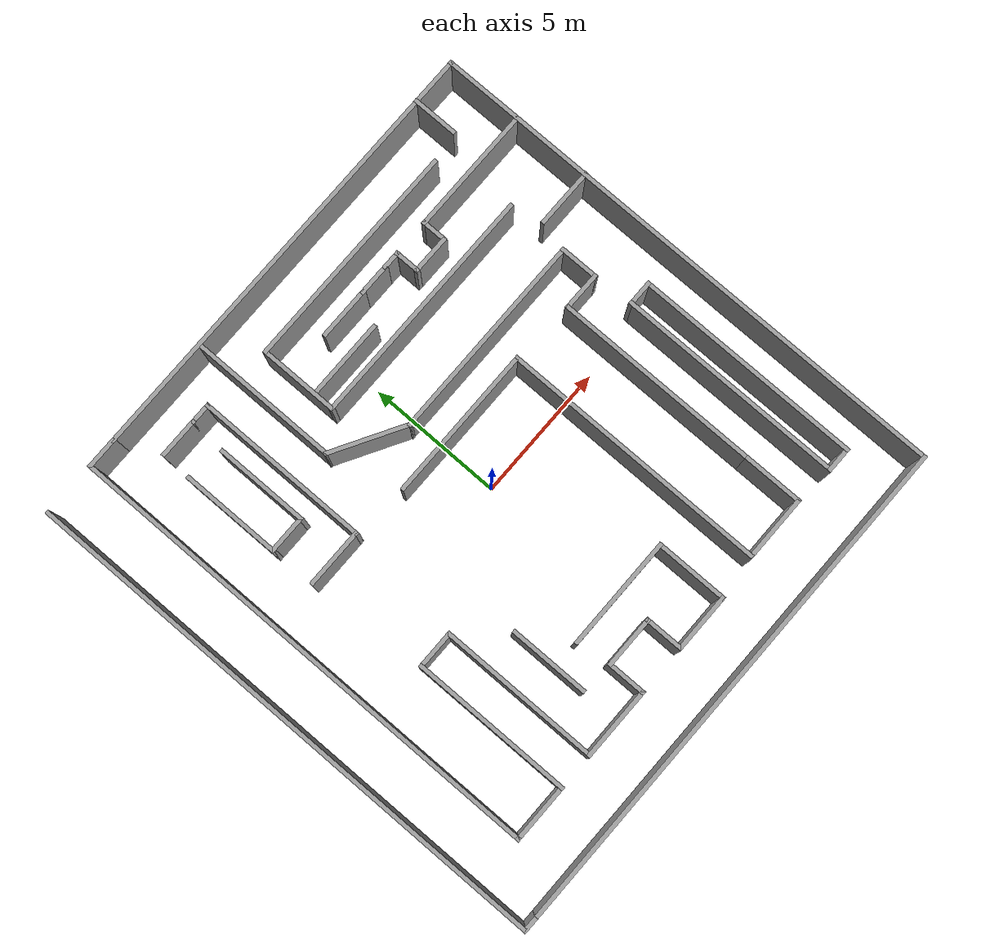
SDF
<?xml version='1.0'?>
<sdf version='1.6'>
  <model name='maze'>
    <pose frame=''>-0.235363 0.007453 0 0 -0 0</pose>
    <link name='Wall_10'>
      <collision name='Wall_10_Collision'>
        <geometry>
          <box>
            <size>16.75 0.15 2.5</size>
          </box>
        </geometry>
        <pose frame=''>0 0 1.25 0 -0 0</pose>
      </collision>
      <visual name='Wall_10_Visual'>
        <pose frame=''>0 0 1.25 0 -0 0</pose>
        <geometry>
          <box>
            <size>16.75 0.15 2.5</size>
          </box>
        </geometry>
        <material>
          <script>
            <uri>file://media/materials/scripts/gazebo.material</uri>
            <name>Gazebo/Grey</name>
          </script>
          <ambient>1 1 1 1</ambient>
        </material>
        <meta>
          <layer>0</layer>
        </meta>
      </visual>
      <pose frame=''>1.54167 10.0441 0 0 -0 3.14159</pose>
    </link>
    <link name='Wall_113'>
      <collision name='Wall_113_Collision'>
        <geometry>
          <box>
            <size>1.5 0.15 2.5</size>
          </box>
        </geometry>
        <pose frame=''>0 0 1.25 0 -0 0</pose>
      </collision>
      <visual name='Wall_113_Visual'>
        <pose frame=''>0 0 1.25 0 -0 0</pose>
        <geometry>
          <box>
            <size>1.5 0.15 2.5</size>
          </box>
        </geometry>
        <material>
          <script>
            <uri>file://media/materials/scripts/gazebo.material</uri>
            <name>Gazebo/Grey</name>
          </script>
          <ambient>1 1 1 1</ambient>
        </material>
        <meta>
          <layer>0</layer>
        </meta>
      </visual>
      <pose frame=''>7.46178 2.48572 0 0 -0 1.5708</pose>
    </link>
    <link name='Wall_120'>
      <collision name='Wall_120_Collision'>
        <geometry>
          <box>
            <size>7.75 0.15 2.5</size>
          </box>
        </geometry>
        <pose frame=''>0 0 1.25 0 -0 0</pose>
      </collision>
      <visual name='Wall_120_Visual'>
        <pose frame=''>0 0 1.25 0 -0 0</pose>
        <geometry>
          <box>
            <size>7.75 0.15 2.5</size>
          </box>
        </geometry>
        <material>
          <script>
            <uri>file://media/materials/scripts/gazebo.material</uri>
            <name>Gazebo/Grey</name>
          </script>
          <ambient>1 1 1 1</ambient>
        </material>
        <meta>
          <layer>0</layer>
        </meta>
      </visual>
      <pose frame=''>3.66178 3.16072 0 0 -0 3.14159</pose>
    </link>
    <link name='Wall_121'>
      <collision name='Wall_121_Collision'>
        <geometry>
          <box>
            <size>3 0.15 2.5</size>
          </box>
        </geometry>
        <pose frame=''>0 0 1.25 0 -0 0</pose>
      </collision>
      <visual name='Wall_121_Visual'>
        <pose frame=''>0 0 1.25 0 -0 0</pose>
        <geometry>
          <box>
            <size>3 0.15 2.5</size>
          </box>
        </geometry>
        <material>
          <script>
            <uri>file://media/materials/scripts/gazebo.material</uri>
            <name>Gazebo/Grey</name>
          </script>
          <ambient>1 1 1 1</ambient>
        </material>
        <meta>
          <layer>0</layer>
        </meta>
      </visual>
      <pose frame=''>-1.37231 3.87322 0 0 -0 2.61799</pose>
    </link>
    <link name='Wall_122'>
      <collision name='Wall_122_Collision'>
        <geometry>
          <box>
            <size>5.5 0.15 2.5</size>
          </box>
        </geometry>
        <pose frame=''>0 0 1.25 0 -0 0</pose>
      </collision>
      <visual name='Wall_122_Visual'>
        <pose frame=''>0 0 1.25 0 -0 0</pose>
        <geometry>
          <box>
            <size>5.5 0.15 2.5</size>
          </box>
        </geometry>
        <material>
          <script>
            <uri>file://media/materials/scripts/gazebo.material</uri>
            <name>Gazebo/Grey</name>
          </script>
          <ambient>1 1 1 1</ambient>
        </material>
        <meta>
          <layer>0</layer>
        </meta>
      </visual>
      <pose frame=''>-2.60639 7.26072 0 0 -0 1.5708</pose>
    </link>
    <link name='Wall_128'>
      <collision name='Wall_128_Collision'>
        <geometry>
          <box>
            <size>4.75 0.15 2.5</size>
          </box>
        </geometry>
        <pose frame=''>0 0 1.25 0 -0 0</pose>
      </collision>
      <visual name='Wall_128_Visual'>
        <pose frame=''>0 0 1.25 0 -0 0</pose>
        <geometry>
          <box>
            <size>4.75 0.15 2.5</size>
          </box>
        </geometry>
        <material>
          <script>
            <uri>file://media/materials/scripts/gazebo.material</uri>
            <name>Gazebo/Grey</name>
          </script>
          <ambient>1 1 1 1</ambient>
        </material>
        <meta>
          <layer>0</layer>
        </meta>
      </visual>
      <pose frame=''>7.49276 7.1714 0 0 -0 3.14159</pose>
    </link>
    <link name='Wall_129'>
      <collision name='Wall_129_Collision'>
        <geometry>
          <box>
            <size>1 0.15 2.5</size>
          </box>
        </geometry>
        <pose frame=''>0 0 1.25 0 -0 0</pose>
      </collision>
      <visual name='Wall_129_Visual'>
        <pose frame=''>0 0 1.25 0 -0 0</pose>
        <geometry>
          <box>
            <size>1 0.15 2.5</size>
          </box>
        </geometry>
        <material>
          <script>
            <uri>file://media/materials/scripts/gazebo.material</uri>
            <name>Gazebo/Grey</name>
          </script>
          <ambient>1 1 1 1</ambient>
        </material>
        <meta>
          <layer>0</layer>
        </meta>
      </visual>
      <pose frame=''>5.19276 6.7464 0 0 0 -1.5708</pose>
    </link>
    <link name='Wall_130'>
      <collision name='Wall_130_Collision'>
        <geometry>
          <box>
            <size>1.5 0.15 2.5</size>
          </box>
        </geometry>
        <pose frame=''>0 0 1.25 0 -0 0</pose>
      </collision>
      <visual name='Wall_130_Visual'>
        <pose frame=''>0 0 1.25 0 -0 0</pose>
        <geometry>
          <box>
            <size>1.5 0.15 2.5</size>
          </box>
        </geometry>
        <material>
          <script>
            <uri>file://media/materials/scripts/gazebo.material</uri>
            <name>Gazebo/Grey</name>
          </script>
          <ambient>1 1 1 1</ambient>
        </material>
        <meta>
          <layer>0</layer>
        </meta>
      </visual>
      <pose frame=''>4.51776 6.3214 0 0 -0 3.14159</pose>
    </link>
    <link name='Wall_131'>
      <collision name='Wall_131_Collision'>
        <geometry>
          <box>
            <size>1 0.15 2.5</size>
          </box>
        </geometry>
        <pose frame=''>0 0 1.25 0 -0 0</pose>
      </collision>
      <visual name='Wall_131_Visual'>
        <pose frame=''>0 0 1.25 0 -0 0</pose>
        <geometry>
          <box>
            <size>1 0.15 2.5</size>
          </box>
        </geometry>
        <material>
          <script>
            <uri>file://media/materials/scripts/gazebo.material</uri>
            <name>Gazebo/Grey</name>
          </script>
          <ambient>1 1 1 1</ambient>
        </material>
        <meta>
          <layer>0</layer>
        </meta>
      </visual>
      <pose frame=''>3.84276 6.7464 0 0 -0 1.5708</pose>
    </link>
    <link name='Wall_132'>
      <collision name='Wall_132_Collision'>
        <geometry>
          <box>
            <size>0.75 0.15 2.5</size>
          </box>
        </geometry>
        <pose frame=''>0 0 1.25 0 -0 0</pose>
      </collision>
      <visual name='Wall_132_Visual'>
        <pose frame=''>0 0 1.25 0 -0 0</pose>
        <geometry>
          <box>
            <size>0.75 0.15 2.5</size>
          </box>
        </geometry>
        <material>
          <script>
            <uri>file://media/materials/scripts/gazebo.material</uri>
            <name>Gazebo/Grey</name>
          </script>
          <ambient>1 1 1 1</ambient>
        </material>
        <meta>
          <layer>0</layer>
        </meta>
      </visual>
      <pose frame=''>3.54276 7.1714 0 0 -0 3.14159</pose>
    </link>
    <link name='Wall_134'>
      <collision name='Wall_134_Collision'>
        <geometry>
          <box>
            <size>1.25 0.15 2.5</size>
          </box>
        </geometry>
        <pose frame=''>0 0 1.25 0 -0 0</pose>
      </collision>
      <visual name='Wall_134_Visual'>
        <pose frame=''>0 0 1.25 0 -0 0</pose>
        <geometry>
          <box>
            <size>1.25 0.15 2.5</size>
          </box>
        </geometry>
        <material>
          <script>
            <uri>file://media/materials/scripts/gazebo.material</uri>
            <name>Gazebo/Grey</name>
          </script>
          <ambient>1 1 1 1</ambient>
        </material>
        <meta>
          <layer>0</layer>
        </meta>
      </visual>
      <pose frame=''>2.69276 7.1714 0 0 -0 3.14159</pose>
    </link>
    <link name='Wall_138'>
      <collision name='Wall_138_Collision'>
        <geometry>
          <box>
            <size>2 0.15 2.5</size>
          </box>
        </geometry>
        <pose frame=''>0 0 1.25 0 -0 0</pose>
      </collision>
      <visual name='Wall_138_Visual'>
        <pose frame=''>0 0 1.25 0 -0 0</pose>
        <geometry>
          <box>
            <size>2 0.15 2.5</size>
          </box>
        </geometry>
        <material>
          <script>
            <uri>file://media/materials/scripts/gazebo.material</uri>
            <name>Gazebo/Grey</name>
          </script>
          <ambient>1 1 1 1</ambient>
        </material>
        <meta>
          <layer>0</layer>
        </meta>
      </visual>
      <pose frame=''>1.21776 7.1714 0 0 -0 3.14159</pose>
    </link>
    <link name='Wall_141'>
      <collision name='Wall_141_Collision'>
        <geometry>
          <box>
            <size>3 0.15 2.5</size>
          </box>
        </geometry>
        <pose frame=''>0 0 1.25 0 -0 0</pose>
      </collision>
      <visual name='Wall_141_Visual'>
        <pose frame=''>0 0 1.25 0 -0 0</pose>
        <geometry>
          <box>
            <size>3 0.15 2.5</size>
          </box>
        </geometry>
        <material>
          <script>
            <uri>file://media/materials/scripts/gazebo.material</uri>
            <name>Gazebo/Grey</name>
          </script>
          <ambient>1 1 1 1</ambient>
        </material>
        <meta>
          <layer>0</layer>
        </meta>
      </visual>
      <pose frame=''>0.098542 6.14787 0 0 -0 0</pose>
    </link>
    <link name='Wall_146'>
      <collision name='Wall_146_Collision'>
        <geometry>
          <box>
            <size>1.75 0.15 2.5</size>
          </box>
        </geometry>
        <pose frame=''>0 0 1.25 0 -0 0</pose>
      </collision>
      <visual name='Wall_146_Visual'>
        <pose frame=''>0 0 1.25 0 -0 0</pose>
        <geometry>
          <box>
            <size>1.75 0.15 2.5</size>
          </box>
        </geometry>
        <material>
          <script>
            <uri>file://media/materials/scripts/gazebo.material</uri>
            <name>Gazebo/Grey</name>
          </script>
          <ambient>1 1 1 1</ambient>
        </material>
        <meta>
          <layer>0</layer>
        </meta>
      </visual>
      <pose frame=''>8.1179 9.25588 0 0 0 -1.5708</pose>
    </link>
    <link name='Wall_148'>
      <collision name='Wall_148_Collision'>
        <geometry>
          <box>
            <size>3 0.15 2.5</size>
          </box>
        </geometry>
        <pose frame=''>0 0 1.25 0 -0 0</pose>
      </collision>
      <visual name='Wall_148_Visual'>
        <pose frame=''>0 0 1.25 0 -0 0</pose>
        <geometry>
          <box>
            <size>3 0.15 2.5</size>
          </box>
        </geometry>
        <material>
          <script>
            <uri>file://media/materials/scripts/gazebo.material</uri>
            <name>Gazebo/Grey</name>
          </script>
          <ambient>1 1 1 1</ambient>
        </material>
        <meta>
          <layer>0</layer>
        </meta>
      </visual>
      <pose frame=''>-3.00132 -5.17468 0 0 -0 1.5708</pose>
    </link>
    <link name='Wall_151'>
      <collision name='Wall_151_Collision'>
        <geometry>
          <box>
            <size>4.25 0.15 2.5</size>
          </box>
        </geometry>
        <pose frame=''>0 0 1.25 0 -0 0</pose>
      </collision>
      <visual name='Wall_151_Visual'>
        <pose frame=''>0 0 1.25 0 -0 0</pose>
        <geometry>
          <box>
            <size>4.25 0.15 2.5</size>
          </box>
        </geometry>
        <material>
          <script>
            <uri>file://media/materials/scripts/gazebo.material</uri>
            <name>Gazebo/Grey</name>
          </script>
          <ambient>1 1 1 1</ambient>
        </material>
        <meta>
          <layer>0</layer>
        </meta>
      </visual>
      <pose frame=''>0.09167 -5.45588 0 0 -0 3.14159</pose>
    </link>
    <link name='Wall_159'>
      <collision name='Wall_159_Collision'>
        <geometry>
          <box>
            <size>2.25 0.15 2.5</size>
          </box>
        </geometry>
        <pose frame=''>0 0 1.25 0 -0 0</pose>
      </collision>
      <visual name='Wall_159_Visual'>
        <pose frame=''>0 0 1.25 0 -0 0</pose>
        <geometry>
          <box>
            <size>2.25 0.15 2.5</size>
          </box>
        </geometry>
        <material>
          <script>
            <uri>file://media/materials/scripts/gazebo.material</uri>
            <name>Gazebo/Grey</name>
          </script>
          <ambient>1 1 1 1</ambient>
        </material>
        <meta>
          <layer>0</layer>
        </meta>
      </visual>
      <pose frame=''>8.80833 4.24763 0 0 -0 0</pose>
    </link>
    <link name='Wall_170'>
      <collision name='Wall_170_Collision'>
        <geometry>
          <box>
            <size>0.75 0.15 2.5</size>
          </box>
        </geometry>
        <pose frame=''>0 0 1.25 0 -0 0</pose>
      </collision>
      <visual name='Wall_170_Visual'>
        <pose frame=''>0 0 1.25 0 -0 0</pose>
        <geometry>
          <box>
            <size>0.75 0.15 2.5</size>
          </box>
        </geometry>
        <material>
          <script>
            <uri>file://media/materials/scripts/gazebo.material</uri>
            <name>Gazebo/Grey</name>
          </script>
          <ambient>1 1 1 1</ambient>
        </material>
        <meta>
          <layer>0</layer>
        </meta>
      </visual>
      <pose frame=''>-9.55833 -10.0559 0 0 -0 3.14159</pose>
    </link>
    <link name='Wall_173'>
      <collision name='Wall_173_Collision'>
        <geometry>
          <box>
            <size>20.25 0.15 2.5</size>
          </box>
        </geometry>
        <pose frame=''>0 0 1.25 0 -0 0</pose>
      </collision>
      <visual name='Wall_173_Visual'>
        <pose frame=''>0 0 1.25 0 -0 0</pose>
        <geometry>
          <box>
            <size>20.25 0.15 2.5</size>
          </box>
        </geometry>
        <material>
          <script>
            <uri>file://media/materials/scripts/gazebo.material</uri>
            <name>Gazebo/Grey</name>
          </script>
          <ambient>1 1 1 1</ambient>
        </material>
        <meta>
          <layer>0</layer>
        </meta>
      </visual>
      <pose frame=''>-9.85833 -0.005879 0 0 -0 1.5708</pose>
    </link>
    <link name='Wall_18'>
      <collision name='Wall_18_Collision'>
        <geometry>
          <box>
            <size>1.25 0.15 2.5</size>
          </box>
        </geometry>
        <pose frame=''>0 0 1.25 0 -0 0</pose>
      </collision>
      <visual name='Wall_18_Visual'>
        <pose frame=''>0 0 1.25 0 -0 0</pose>
        <geometry>
          <box>
            <size>1.25 0.15 2.5</size>
          </box>
        </geometry>
        <material>
          <script>
            <uri>file://media/materials/scripts/gazebo.material</uri>
            <name>Gazebo/Grey</name>
          </script>
          <ambient>1 1 1 1</ambient>
        </material>
        <meta>
          <layer>0</layer>
        </meta>
      </visual>
      <pose frame=''>-7.30833 10.0441 0 0 -0 3.14159</pose>
    </link>
    <link name='Wall_19'>
      <collision name='Wall_19_Collision'>
        <geometry>
          <box>
            <size>18.25 0.15 2.5</size>
          </box>
        </geometry>
        <pose frame=''>0 0 1.25 0 -0 0</pose>
      </collision>
      <visual name='Wall_19_Visual'>
        <pose frame=''>0 0 1.25 0 -0 0</pose>
        <geometry>
          <box>
            <size>18.25 0.15 2.5</size>
          </box>
        </geometry>
        <material>
          <script>
            <uri>file://media/materials/scripts/gazebo.material</uri>
            <name>Gazebo/Grey</name>
          </script>
          <ambient>1 1 1 1</ambient>
        </material>
        <meta>
          <layer>0</layer>
        </meta>
      </visual>
      <pose frame=''>-7.85833 0.994121 0 0 0 -1.5708</pose>
    </link>
    <link name='Wall_20'>
      <collision name='Wall_20_Collision'>
        <geometry>
          <box>
            <size>2.25 0.15 2.5</size>
          </box>
        </geometry>
        <pose frame=''>0 0 1.25 0 -0 0</pose>
      </collision>
      <visual name='Wall_20_Visual'>
        <pose frame=''>0 0 1.25 0 -0 0</pose>
        <geometry>
          <box>
            <size>2.25 0.15 2.5</size>
          </box>
        </geometry>
        <material>
          <script>
            <uri>file://media/materials/scripts/gazebo.material</uri>
            <name>Gazebo/Grey</name>
          </script>
          <ambient>1 1 1 1</ambient>
        </material>
        <meta>
          <layer>0</layer>
        </meta>
      </visual>
      <pose frame=''>-6.80833 -8.05588 0 0 -0 0</pose>
    </link>
    <link name='Wall_21'>
      <collision name='Wall_21_Collision'>
        <geometry>
          <box>
            <size>6 0.15 2.5</size>
          </box>
        </geometry>
        <pose frame=''>0 0 1.25 0 -0 0</pose>
      </collision>
      <visual name='Wall_21_Visual'>
        <pose frame=''>0 0 1.25 0 -0 0</pose>
        <geometry>
          <box>
            <size>6 0.15 2.5</size>
          </box>
        </geometry>
        <material>
          <script>
            <uri>file://media/materials/scripts/gazebo.material</uri>
            <name>Gazebo/Grey</name>
          </script>
          <ambient>1 1 1 1</ambient>
        </material>
        <meta>
          <layer>0</layer>
        </meta>
      </visual>
      <pose frame=''>-5.75833 -5.13088 0 0 -0 1.5708</pose>
    </link>
    <link name='Wall_22'>
      <collision name='Wall_22_Collision'>
        <geometry>
          <box>
            <size>1.5 0.15 2.5</size>
          </box>
        </geometry>
        <pose frame=''>0 0 1.25 0 -0 0</pose>
      </collision>
      <visual name='Wall_22_Visual'>
        <pose frame=''>0 0 1.25 0 -0 0</pose>
        <geometry>
          <box>
            <size>1.5 0.15 2.5</size>
          </box>
        </geometry>
        <material>
          <script>
            <uri>file://media/materials/scripts/gazebo.material</uri>
            <name>Gazebo/Grey</name>
          </script>
          <ambient>1 1 1 1</ambient>
        </material>
        <meta>
          <layer>0</layer>
        </meta>
      </visual>
      <pose frame=''>-5.08333 -2.20588 0 0 -0 0</pose>
    </link>
    <link name='Wall_23'>
      <collision name='Wall_23_Collision'>
        <geometry>
          <box>
            <size>6 0.15 2.5</size>
          </box>
        </geometry>
        <pose frame=''>0 0 1.25 0 -0 0</pose>
      </collision>
      <visual name='Wall_23_Visual'>
        <pose frame=''>0 0 1.25 0 -0 0</pose>
        <geometry>
          <box>
            <size>6 0.15 2.5</size>
          </box>
        </geometry>
        <material>
          <script>
            <uri>file://media/materials/scripts/gazebo.material</uri>
            <name>Gazebo/Grey</name>
          </script>
          <ambient>1 1 1 1</ambient>
        </material>
        <meta>
          <layer>0</layer>
        </meta>
      </visual>
      <pose frame=''>-4.40833 -5.13088 0 0 0 -1.5708</pose>
    </link>
    <link name='Wall_24'>
      <collision name='Wall_24_Collision'>
        <geometry>
          <box>
            <size>2.75 0.15 2.5</size>
          </box>
        </geometry>
        <pose frame=''>0 0 1.25 0 -0 0</pose>
      </collision>
      <visual name='Wall_24_Visual'>
        <pose frame=''>0 0 1.25 0 -0 0</pose>
        <geometry>
          <box>
            <size>2.75 0.15 2.5</size>
          </box>
        </geometry>
        <material>
          <script>
            <uri>file://media/materials/scripts/gazebo.material</uri>
            <name>Gazebo/Grey</name>
          </script>
          <ambient>1 1 1 1</ambient>
        </material>
        <meta>
          <layer>0</layer>
        </meta>
      </visual>
      <pose frame=''>-3.10833 -8.05588 0 0 -0 0</pose>
    </link>
    <link name='Wall_25'>
      <collision name='Wall_25_Collision'>
        <geometry>
          <box>
            <size>1.5 0.15 2.5</size>
          </box>
        </geometry>
        <pose frame=''>0 0 1.25 0 -0 0</pose>
      </collision>
      <visual name='Wall_25_Visual'>
        <pose frame=''>0 0 1.25 0 -0 0</pose>
        <geometry>
          <box>
            <size>1.5 0.15 2.5</size>
          </box>
        </geometry>
        <material>
          <script>
            <uri>file://media/materials/scripts/gazebo.material</uri>
            <name>Gazebo/Grey</name>
          </script>
          <ambient>1 1 1 1</ambient>
        </material>
        <meta>
          <layer>0</layer>
        </meta>
      </visual>
      <pose frame=''>-1.80833 -7.38088 0 0 -0 1.5708</pose>
    </link>
    <link name='Wall_26'>
      <collision name='Wall_26_Collision'>
        <geometry>
          <box>
            <size>2 0.15 2.5</size>
          </box>
        </geometry>
        <pose frame=''>0 0 1.25 0 -0 0</pose>
      </collision>
      <visual name='Wall_26_Visual'>
        <pose frame=''>0 0 1.25 0 -0 0</pose>
        <geometry>
          <box>
            <size>2 0.15 2.5</size>
          </box>
        </geometry>
        <material>
          <script>
            <uri>file://media/materials/scripts/gazebo.material</uri>
            <name>Gazebo/Grey</name>
          </script>
          <ambient>1 1 1 1</ambient>
        </material>
        <meta>
          <layer>0</layer>
        </meta>
      </visual>
      <pose frame=''>-0.88333 -6.70588 0 0 -0 0</pose>
    </link>
    <link name='Wall_27'>
      <collision name='Wall_27_Collision'>
        <geometry>
          <box>
            <size>1.5 0.15 2.5</size>
          </box>
        </geometry>
        <pose frame=''>0 0 1.25 0 -0 0</pose>
      </collision>
      <visual name='Wall_27_Visual'>
        <pose frame=''>0 0 1.25 0 -0 0</pose>
        <geometry>
          <box>
            <size>1.5 0.15 2.5</size>
          </box>
        </geometry>
        <material>
          <script>
            <uri>file://media/materials/scripts/gazebo.material</uri>
            <name>Gazebo/Grey</name>
          </script>
          <ambient>1 1 1 1</ambient>
        </material>
        <meta>
          <layer>0</layer>
        </meta>
      </visual>
      <pose frame=''>0.04167 -7.38088 0 0 0 -1.5708</pose>
    </link>
    <link name='Wall_28'>
      <collision name='Wall_28_Collision'>
        <geometry>
          <box>
            <size>2.25 0.15 2.5</size>
          </box>
        </geometry>
        <pose frame=''>0 0 1.25 0 -0 0</pose>
      </collision>
      <visual name='Wall_28_Visual'>
        <pose frame=''>0 0 1.25 0 -0 0</pose>
        <geometry>
          <box>
            <size>2.25 0.15 2.5</size>
          </box>
        </geometry>
        <material>
          <script>
            <uri>file://media/materials/scripts/gazebo.material</uri>
            <name>Gazebo/Grey</name>
          </script>
          <ambient>1 1 1 1</ambient>
        </material>
        <meta>
          <layer>0</layer>
        </meta>
      </visual>
      <pose frame=''>1.09167 -8.05588 0 0 -0 0</pose>
    </link>
    <link name='Wall_29'>
      <collision name='Wall_29_Collision'>
        <geometry>
          <box>
            <size>2.75 0.15 2.5</size>
          </box>
        </geometry>
        <pose frame=''>0 0 1.25 0 -0 0</pose>
      </collision>
      <visual name='Wall_29_Visual'>
        <pose frame=''>0 0 1.25 0 -0 0</pose>
        <geometry>
          <box>
            <size>2.75 0.15 2.5</size>
          </box>
        </geometry>
        <material>
          <script>
            <uri>file://media/materials/scripts/gazebo.material</uri>
            <name>Gazebo/Grey</name>
          </script>
          <ambient>1 1 1 1</ambient>
        </material>
        <meta>
          <layer>0</layer>
        </meta>
      </visual>
      <pose frame=''>2.14167 -6.75588 0 0 -0 1.5708</pose>
    </link>
    <link name='Wall_37'>
      <collision name='Wall_37_Collision'>
        <geometry>
          <box>
            <size>0.15 0.15 2.5</size>
          </box>
        </geometry>
        <pose frame=''>0 0 1.25 0 -0 0</pose>
      </collision>
      <visual name='Wall_37_Visual'>
        <pose frame=''>0 0 1.25 0 -0 0</pose>
        <geometry>
          <box>
            <size>0.15 0.15 2.5</size>
          </box>
        </geometry>
        <material>
          <script>
            <uri>file://media/materials/scripts/gazebo.material</uri>
            <name>Gazebo/Grey</name>
          </script>
          <ambient>1 1 1 1</ambient>
        </material>
        <meta>
          <layer>0</layer>
        </meta>
      </visual>
      <pose frame=''>-4.61147 8.50321 0 0 -0 0</pose>
    </link>
    <link name='Wall_48'>
      <collision name='Wall_48_Collision'>
        <geometry>
          <box>
            <size>2.25 0.15 2.5</size>
          </box>
        </geometry>
        <pose frame=''>0 0 1.25 0 -0 0</pose>
      </collision>
      <visual name='Wall_48_Visual'>
        <pose frame=''>0 0 1.25 0 -0 0</pose>
        <geometry>
          <box>
            <size>2.25 0.15 2.5</size>
          </box>
        </geometry>
        <material>
          <script>
            <uri>file://media/materials/scripts/gazebo.material</uri>
            <name>Gazebo/Grey</name>
          </script>
          <ambient>1 1 1 1</ambient>
        </material>
        <meta>
          <layer>0</layer>
        </meta>
      </visual>
      <pose frame=''>-4.97537 2.15321 0 0 -0 0</pose>
    </link>
    <link name='Wall_49'>
      <collision name='Wall_49_Collision'>
        <geometry>
          <box>
            <size>6.5 0.15 2.5</size>
          </box>
        </geometry>
        <pose frame=''>0 0 1.25 0 -0 0</pose>
      </collision>
      <visual name='Wall_49_Visual'>
        <pose frame=''>0 0 1.25 0 -0 0</pose>
        <geometry>
          <box>
            <size>6.5 0.15 2.5</size>
          </box>
        </geometry>
        <material>
          <script>
            <uri>file://media/materials/scripts/gazebo.material</uri>
            <name>Gazebo/Grey</name>
          </script>
          <ambient>1 1 1 1</ambient>
        </material>
        <meta>
          <layer>0</layer>
        </meta>
      </visual>
      <pose frame=''>-3.92537 5.32821 0 0 -0 1.5708</pose>
    </link>
    <link name='Wall_50'>
      <collision name='Wall_50_Collision'>
        <geometry>
          <box>
            <size>2.25 0.15 2.5</size>
          </box>
        </geometry>
        <pose frame=''>0 0 1.25 0 -0 0</pose>
      </collision>
      <visual name='Wall_50_Visual'>
        <pose frame=''>0 0 1.25 0 -0 0</pose>
        <geometry>
          <box>
            <size>2.25 0.15 2.5</size>
          </box>
        </geometry>
        <material>
          <script>
            <uri>file://media/materials/scripts/gazebo.material</uri>
            <name>Gazebo/Grey</name>
          </script>
          <ambient>1 1 1 1</ambient>
        </material>
        <meta>
          <layer>0</layer>
        </meta>
      </visual>
      <pose frame=''>-4.97537 8.50321 0 0 -0 3.14159</pose>
    </link>
    <link name='Wall_52'>
      <collision name='Wall_52_Collision'>
        <geometry>
          <box>
            <size>3.75 0.15 2.5</size>
          </box>
        </geometry>
        <pose frame=''>0 0 1.25 0 -0 0</pose>
      </collision>
      <visual name='Wall_52_Visual'>
        <pose frame=''>0 0 1.25 0 -0 0</pose>
        <geometry>
          <box>
            <size>3.75 0.15 2.5</size>
          </box>
        </geometry>
        <material>
          <script>
            <uri>file://media/materials/scripts/gazebo.material</uri>
            <name>Gazebo/Grey</name>
          </script>
          <ambient>1 1 1 1</ambient>
        </material>
        <meta>
          <layer>0</layer>
        </meta>
      </visual>
      <pose frame=''>-6.0719 5.60402 0 0 0 -1.5708</pose>
    </link>
    <link name='Wall_53'>
      <collision name='Wall_53_Collision'>
        <geometry>
          <box>
            <size>1.5 0.15 2.5</size>
          </box>
        </geometry>
        <pose frame=''>0 0 1.25 0 -0 0</pose>
      </collision>
      <visual name='Wall_53_Visual'>
        <pose frame=''>0 0 1.25 0 -0 0</pose>
        <geometry>
          <box>
            <size>1.5 0.15 2.5</size>
          </box>
        </geometry>
        <material>
          <script>
            <uri>file://media/materials/scripts/gazebo.material</uri>
            <name>Gazebo/Grey</name>
          </script>
          <ambient>1 1 1 1</ambient>
        </material>
        <meta>
          <layer>0</layer>
        </meta>
      </visual>
      <pose frame=''>-5.3969 3.80402 0 0 -0 0</pose>
    </link>
    <link name='Wall_56'>
      <collision name='Wall_56_Collision'>
        <geometry>
          <box>
            <size>3.5 0.15 2.5</size>
          </box>
        </geometry>
        <pose frame=''>0 0 1.25 0 -0 0</pose>
      </collision>
      <visual name='Wall_56_Visual'>
        <pose frame=''>0 0 1.25 0 -0 0</pose>
        <geometry>
          <box>
            <size>3.5 0.15 2.5</size>
          </box>
        </geometry>
        <material>
          <script>
            <uri>file://media/materials/scripts/gazebo.material</uri>
            <name>Gazebo/Grey</name>
          </script>
          <ambient>1 1 1 1</ambient>
        </material>
        <meta>
          <layer>0</layer>
        </meta>
      </visual>
      <pose frame=''>-4.7219 5.47902 0 0 -0 1.5708</pose>
    </link>
    <link name='Wall_58'>
      <collision name='Wall_58_Collision'>
        <geometry>
          <box>
            <size>5.75 0.15 2.5</size>
          </box>
        </geometry>
        <pose frame=''>0 0 1.25 0 -0 0</pose>
      </collision>
      <visual name='Wall_58_Visual'>
        <pose frame=''>0 0 1.25 0 -0 0</pose>
        <geometry>
          <box>
            <size>5.75 0.15 2.5</size>
          </box>
        </geometry>
        <material>
          <script>
            <uri>file://media/materials/scripts/gazebo.material</uri>
            <name>Gazebo/Grey</name>
          </script>
          <ambient>1 1 1 1</ambient>
        </material>
        <meta>
          <layer>0</layer>
        </meta>
      </visual>
      <pose frame=''>0.961779 1.96072 0 0 -0 0</pose>
    </link>
    <link name='Wall_59'>
      <collision name='Wall_59_Collision'>
        <geometry>
          <box>
            <size>10 0.15 2.5</size>
          </box>
        </geometry>
        <pose frame=''>0 0 1.25 0 -0 0</pose>
      </collision>
      <visual name='Wall_59_Visual'>
        <pose frame=''>0 0 1.25 0 -0 0</pose>
        <geometry>
          <box>
            <size>10 0.15 2.5</size>
          </box>
        </geometry>
        <material>
          <script>
            <uri>file://media/materials/scripts/gazebo.material</uri>
            <name>Gazebo/Grey</name>
          </script>
          <ambient>1 1 1 1</ambient>
        </material>
        <meta>
          <layer>0</layer>
        </meta>
      </visual>
      <pose frame=''>3.76178 -2.96428 0 0 0 -1.5708</pose>
    </link>
    <link name='Wall_60'>
      <collision name='Wall_60_Collision'>
        <geometry>
          <box>
            <size>2.5 0.15 2.5</size>
          </box>
        </geometry>
        <pose frame=''>0 0 1.25 0 -0 0</pose>
      </collision>
      <visual name='Wall_60_Visual'>
        <pose frame=''>0 0 1.25 0 -0 0</pose>
        <geometry>
          <box>
            <size>2.5 0.15 2.5</size>
          </box>
        </geometry>
        <material>
          <script>
            <uri>file://media/materials/scripts/gazebo.material</uri>
            <name>Gazebo/Grey</name>
          </script>
          <ambient>1 1 1 1</ambient>
        </material>
        <meta>
          <layer>0</layer>
        </meta>
      </visual>
      <pose frame=''>4.93678 -7.88928 0 0 -0 0</pose>
    </link>
    <link name='Wall_72'>
      <collision name='Wall_72_Collision'>
        <geometry>
          <box>
            <size>2.25 0.15 2.5</size>
          </box>
        </geometry>
        <pose frame=''>0 0 1.25 0 -0 0</pose>
      </collision>
      <visual name='Wall_72_Visual'>
        <pose frame=''>0 0 1.25 0 -0 0</pose>
        <geometry>
          <box>
            <size>2.25 0.15 2.5</size>
          </box>
        </geometry>
        <material>
          <script>
            <uri>file://media/materials/scripts/gazebo.material</uri>
            <name>Gazebo/Grey</name>
          </script>
          <ambient>1 1 1 1</ambient>
        </material>
        <meta>
          <layer>0</layer>
        </meta>
      </visual>
      <pose frame=''>6.11178 -6.83928 0 0 -0 1.5708</pose>
    </link>
    <link name='Wall_73'>
      <collision name='Wall_73_Collision'>
        <geometry>
          <box>
            <size>7.75 0.15 2.5</size>
          </box>
        </geometry>
        <pose frame=''>0 0 1.25 0 -0 0</pose>
      </collision>
      <visual name='Wall_73_Visual'>
        <pose frame=''>0 0 1.25 0 -0 0</pose>
        <geometry>
          <box>
            <size>7.75 0.15 2.5</size>
          </box>
        </geometry>
        <material>
          <script>
            <uri>file://media/materials/scripts/gazebo.material</uri>
            <name>Gazebo/Grey</name>
          </script>
          <ambient>1 1 1 1</ambient>
        </material>
        <meta>
          <layer>0</layer>
        </meta>
      </visual>
      <pose frame=''>6.11178 -1.98928 0 0 -0 1.5708</pose>
    </link>
    <link name='Wall_74'>
      <collision name='Wall_74_Collision'>
        <geometry>
          <box>
            <size>1.5 0.15 2.5</size>
          </box>
        </geometry>
        <pose frame=''>0 0 1.25 0 -0 0</pose>
      </collision>
      <visual name='Wall_74_Visual'>
        <pose frame=''>0 0 1.25 0 -0 0</pose>
        <geometry>
          <box>
            <size>1.5 0.15 2.5</size>
          </box>
        </geometry>
        <material>
          <script>
            <uri>file://media/materials/scripts/gazebo.material</uri>
            <name>Gazebo/Grey</name>
          </script>
          <ambient>1 1 1 1</ambient>
        </material>
        <meta>
          <layer>0</layer>
        </meta>
      </visual>
      <pose frame=''>6.78678 1.81072 0 0 -0 0</pose>
    </link>
    <link name='Wall_78'>
      <collision name='Wall_78_Collision'>
        <geometry>
          <box>
            <size>8.5 0.15 2.5</size>
          </box>
        </geometry>
        <pose frame=''>0 0 1.25 0 -0 0</pose>
      </collision>
      <visual name='Wall_78_Visual'>
        <pose frame=''>0 0 1.25 0 -0 0</pose>
        <geometry>
          <box>
            <size>8.5 0.15 2.5</size>
          </box>
        </geometry>
        <material>
          <script>
            <uri>file://media/materials/scripts/gazebo.material</uri>
            <name>Gazebo/Grey</name>
          </script>
          <ambient>1 1 1 1</ambient>
        </material>
        <meta>
          <layer>0</layer>
        </meta>
      </visual>
      <pose frame=''>7.55961 -3.84262 0 0 0 -1.5708</pose>
    </link>
    <link name='Wall_79'>
      <collision name='Wall_79_Collision'>
        <geometry>
          <box>
            <size>1 0.15 2.5</size>
          </box>
        </geometry>
        <pose frame=''>0 0 1.25 0 -0 0</pose>
      </collision>
      <visual name='Wall_79_Visual'>
        <pose frame=''>0 0 1.25 0 -0 0</pose>
        <geometry>
          <box>
            <size>1 0.15 2.5</size>
          </box>
        </geometry>
        <material>
          <script>
            <uri>file://media/materials/scripts/gazebo.material</uri>
            <name>Gazebo/Grey</name>
          </script>
          <ambient>1 1 1 1</ambient>
        </material>
        <meta>
          <layer>0</layer>
        </meta>
      </visual>
      <pose frame=''>7.98461 -8.01762 0 0 -0 0</pose>
    </link>
    <link name='Wall_8'>
      <collision name='Wall_8_Collision'>
        <geometry>
          <box>
            <size>19.25 0.15 2.5</size>
          </box>
        </geometry>
        <pose frame=''>0 0 1.25 0 -0 0</pose>
      </collision>
      <visual name='Wall_8_Visual'>
        <pose frame=''>0 0 1.25 0 -0 0</pose>
        <geometry>
          <box>
            <size>19.25 0.15 2.5</size>
          </box>
        </geometry>
        <material>
          <script>
            <uri>file://media/materials/scripts/gazebo.material</uri>
            <name>Gazebo/Grey</name>
          </script>
          <ambient>1 1 1 1</ambient>
        </material>
        <meta>
          <layer>0</layer>
        </meta>
      </visual>
      <pose frame=''>0.29167 -10.0559 0 0 -0 0</pose>
    </link>
    <link name='Wall_80'>
      <collision name='Wall_80_Collision'>
        <geometry>
          <box>
            <size>8.5 0.15 2.5</size>
          </box>
        </geometry>
        <pose frame=''>0 0 1.25 0 -0 0</pose>
      </collision>
      <visual name='Wall_80_Visual'>
        <pose frame=''>0 0 1.25 0 -0 0</pose>
        <geometry>
          <box>
            <size>8.5 0.15 2.5</size>
          </box>
        </geometry>
        <material>
          <script>
            <uri>file://media/materials/scripts/gazebo.material</uri>
            <name>Gazebo/Grey</name>
          </script>
          <ambient>1 1 1 1</ambient>
        </material>
        <meta>
          <layer>0</layer>
        </meta>
      </visual>
      <pose frame=''>8.40961 -3.84262 0 0 -0 1.5708</pose>
    </link>
    <link name='Wall_81'>
      <collision name='Wall_81_Collision'>
        <geometry>
          <box>
            <size>1 0.15 2.5</size>
          </box>
        </geometry>
        <pose frame=''>0 0 1.25 0 -0 0</pose>
      </collision>
      <visual name='Wall_81_Visual'>
        <pose frame=''>0 0 1.25 0 -0 0</pose>
        <geometry>
          <box>
            <size>1 0.15 2.5</size>
          </box>
        </geometry>
        <material>
          <script>
            <uri>file://media/materials/scripts/gazebo.material</uri>
            <name>Gazebo/Grey</name>
          </script>
          <ambient>1 1 1 1</ambient>
        </material>
        <meta>
          <layer>0</layer>
        </meta>
      </visual>
      <pose frame=''>7.98461 0.332381 0 0 -0 3.14159</pose>
    </link>
    <link name='Wall_85'>
      <collision name='Wall_85_Collision'>
        <geometry>
          <box>
            <size>9 0.15 2.5</size>
          </box>
        </geometry>
        <pose frame=''>0 0 1.25 0 -0 0</pose>
      </collision>
      <visual name='Wall_85_Visual'>
        <pose frame=''>0 0 1.25 0 -0 0</pose>
        <geometry>
          <box>
            <size>9 0.15 2.5</size>
          </box>
        </geometry>
        <material>
          <script>
            <uri>file://media/materials/scripts/gazebo.material</uri>
            <name>Gazebo/Grey</name>
          </script>
          <ambient>1 1 1 1</ambient>
        </material>
        <meta>
          <layer>0</layer>
        </meta>
      </visual>
      <pose frame=''>3.03678 5.41072 0 0 -0 3.14159</pose>
    </link>
    <link name='Wall_86'>
      <collision name='Wall_86_Collision'>
        <geometry>
          <box>
            <size>3 0.15 2.5</size>
          </box>
        </geometry>
        <pose frame=''>0 0 1.25 0 -0 0</pose>
      </collision>
      <visual name='Wall_86_Visual'>
        <pose frame=''>0 0 1.25 0 -0 0</pose>
        <geometry>
          <box>
            <size>3 0.15 2.5</size>
          </box>
        </geometry>
        <material>
          <script>
            <uri>file://media/materials/scripts/gazebo.material</uri>
            <name>Gazebo/Grey</name>
          </script>
          <ambient>1 1 1 1</ambient>
        </material>
        <meta>
          <layer>0</layer>
        </meta>
      </visual>
      <pose frame=''>-1.38822 6.83572 0 0 -0 1.5708</pose>
    </link>
    <link name='Wall_9'>
      <collision name='Wall_9_Collision'>
        <geometry>
          <box>
            <size>20.25 0.15 2.5</size>
          </box>
        </geometry>
        <pose frame=''>0 0 1.25 0 -0 0</pose>
      </collision>
      <visual name='Wall_9_Visual'>
        <pose frame=''>0 0 1.25 0 -0 0</pose>
        <geometry>
          <box>
            <size>20.25 0.15 2.5</size>
          </box>
        </geometry>
        <material>
          <script>
            <uri>file://media/materials/scripts/gazebo.material</uri>
            <name>Gazebo/Grey</name>
          </script>
          <ambient>1 1 1 1</ambient>
        </material>
        <meta>
          <layer>0</layer>
        </meta>
      </visual>
      <pose frame=''>9.84167 -0.005879 0 0 -0 1.5708</pose>
    </link>
    <link name='Wall_94'>
      <collision name='Wall_94_Collision'>
        <geometry>
          <box>
            <size>8.5 0.15 2.5</size>
          </box>
        </geometry>
        <pose frame=''>0 0 1.25 0 -0 0</pose>
      </collision>
      <visual name='Wall_94_Visual'>
        <pose frame=''>0 0 1.25 0 -0 0</pose>
        <geometry>
          <box>
            <size>8.5 0.15 2.5</size>
          </box>
        </geometry>
        <material>
          <script>
            <uri>file://media/materials/scripts/gazebo.material</uri>
            <name>Gazebo/Grey</name>
          </script>
          <ambient>1 1 1 1</ambient>
        </material>
        <meta>
          <layer>0</layer>
        </meta>
      </visual>
      <pose frame=''>2.78678 8.26072 0 0 -0 0</pose>
    </link>
    <static>1</static>
  </model>
</sdf>
